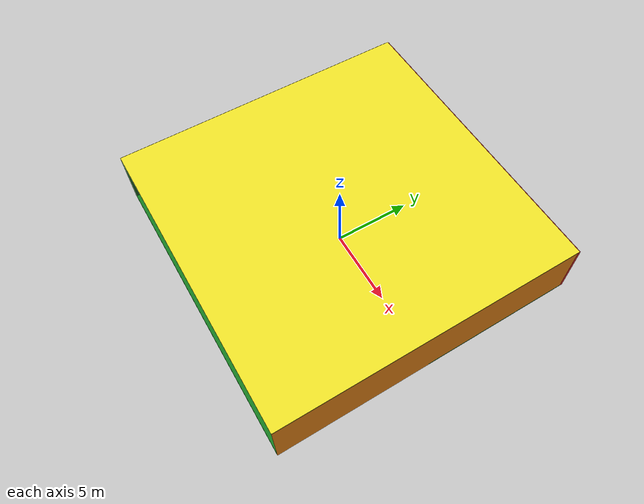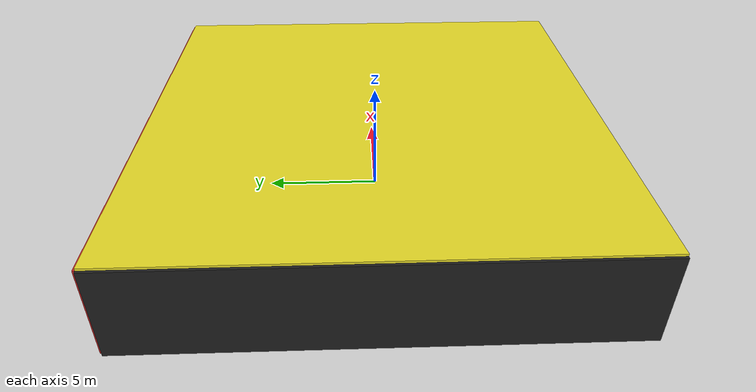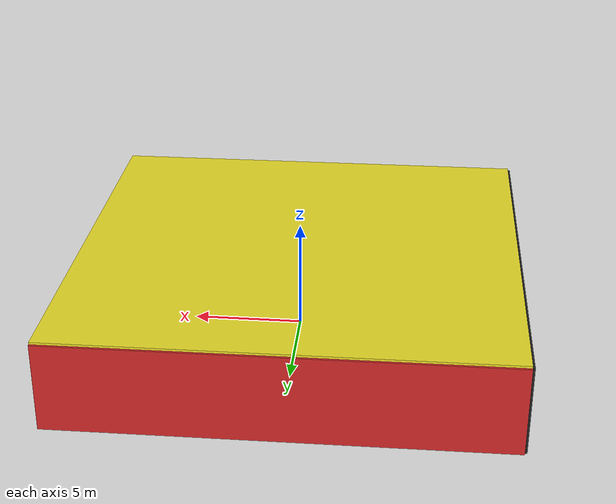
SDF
<sdf version="1.4">
 <world name="default">
  <physics type="ode">
   <max_step_size>0.001</max_step_size>
   <real_time_factor>1</real_time_factor>
   <real_time_update_rate>1000</real_time_update_rate>
   <gravity>0 0 -9.8</gravity>
  </physics>
  <scene><ambient>0.4 0.4 0.4 1</ambient><background>0.7 0.7 0.7 1</background><shadows>1</shadows></scene>
  <model name="Surrounding">
   <static>1</static>
   <link name="Ceiling">
    <collision name="Ceiling_Collision"><geometry><box><size>20 20 0.1</size></box></geometry></collision>
    <visual name="Ceiling_Visual">
     <geometry><box><size>20 20 0.1</size></box></geometry>
     <material>
      <script><uri>file://media/materials/scripts/gazebo.material</uri><name>Gazebo/Yellow</name></script>
     </material>
    </visual>
    <pose>0 0 4.05 0 0 0</pose>
   </link>
   <link name="Wall_South">
    <collision name="Wall_South_Collision">
     <geometry><box><size>20 0 4</size></box></geometry>
     <pose>0 0 2 0 -0 0</pose>
    </collision>
    <visual name="Wall_South_Visual">
     <pose>0 0 2 0 -0 0</pose>
     <geometry><box><size>20 0 4</size></box></geometry>
     <material>
      <script><uri>file://media/materials/scripts/gazebo.material</uri><name>Gazebo/GreenTransparent</name></script>
     </material>
    </visual>
    <velocity_decay><linear>0</linear><angular>0</angular></velocity_decay>
    <pose>0 -10 0 0 -0 0</pose>
   </link>
   <link name="Wall_East">
    <collision name="Wall_21_Collision">
     <geometry><box><size>20 0 4</size></box></geometry>
     <pose>0 0 2 0 -0 0</pose>
    </collision>
    <visual name="Wall_21_Visual">
     <pose>0 0 2 0 -0 0</pose>
     <geometry><box><size>20 0 4</size></box></geometry>
     <material>
      <script><uri>file://media/materials/scripts/gazebo.material</uri><name>Gazebo/Orange</name></script>
     </material>
    </visual>
    <velocity_decay><linear>0</linear><angular>0</angular></velocity_decay>
    <pose>10 0 0 0 -0 1.5708</pose>
   </link>
   <link name="Wall_North">
    <collision name="Wall_22_Collision">
     <geometry><box><size>20 0.2 4</size></box></geometry>
     <pose>0 0 2 0 -0 0</pose>
    </collision>
    <visual name="Wall_22_Visual">
     <pose>0 0 2 0 -0 0</pose>
     <geometry><box><size>20 0.2 4</size></box></geometry>
     <material>
      <script><uri>file://media/materials/scripts/gazebo.material</uri><name>Gazebo/RedGlow</name></script>
     </material>
    </visual>
    <velocity_decay><linear>0</linear><angular>0</angular></velocity_decay>
    <pose>0 10 0 0 -0 0</pose>
   </link>
   <link name="Wall_West">
    <collision name="Wall_23_Collision">
     <geometry><box><size>20 0.2 4</size></box></geometry>
     <pose>0 0 2 0 -0 0</pose>
    </collision>
    <visual name="Wall_23_Visual">
     <pose>0 0 2 0 -0 0</pose>
     <geometry><box><size>20 0.2 4</size></box></geometry>
     <material>
      <script><uri>file://media/materials/scripts/gazebo.material</uri><name>Gazebo/FlatBlack</name></script>
     </material>
    </visual>
    <velocity_decay><linear>0</linear><angular>0</angular></velocity_decay>
    <pose>-10 0 0 0 0 -1.5708</pose>
   </link>
   <link name="Ground_link">
    <collision name="collision">
     <pose>0 0 .05 0 -0 0</pose>
     <geometry><box><size>20 20 0.1</size></box></geometry>
    </collision>
    <visual name="visual">
     <pose>0 0 .05 0 -0 0</pose>
     <geometry><box><size>20 20 0.1</size></box></geometry>
     <material>
      <script><uri>file://media/materials/scripts/gazebo.material</uri><name>Gazebo/Green</name></script>
     </material>
    </visual>
   </link>
   <static>1</static>
  </model>
  <spherical_coordinates>
   <surface_model>EARTH_WGS84</surface_model>
   <latitude_deg>0</latitude_deg>
   <longitude_deg>0</longitude_deg>
   <elevation>0</elevation>
   <heading_deg>0</heading_deg>
  </spherical_coordinates>
  <light name="lightball_0" type="diffuse">
   <diffuse>0.8 0.8 0.8 1</diffuse>
   <specular>0.2 0.2 0.2 1</specular>
   <attenuation>
    <range>100</range>
    <constant>0.7</constant>
    <linear>0.01</linear>
    <quadratic>0.001</quadratic>
   </attenuation>
   <direction>-0.5 0.1 -0.9</direction>
   <pose>7.40743957579 -2.14707813382 3.8929556122 0 0 0</pose>
  </light>
  <light name="lightball_1" type="diffuse">
   <diffuse>0.8 0.8 0.8 1</diffuse>
   <specular>0.2 0.2 0.2 1</specular>
   <attenuation>
    <range>100</range>
    <constant>0.7</constant>
    <linear>0.01</linear>
    <quadratic>0.001</quadratic>
   </attenuation>
   <direction>-0.5 0.1 -0.9</direction>
   <pose>-5.08573015748 -4.66153321444 2.47555196219 0 0 0</pose>
  </light>
  <light name="lightball_2" type="diffuse">
   <diffuse>0.8 0.8 0.8 1</diffuse>
   <specular>0.2 0.2 0.2 1</specular>
   <attenuation>
    <range>100</range>
    <constant>0.7</constant>
    <linear>0.01</linear>
    <quadratic>0.001</quadratic>
   </attenuation>
   <direction>-0.5 0.1 -0.9</direction>
   <pose>6.00209521727 -6.71407208106 3.27733220318 0 0 0</pose>
  </light>
  <include><uri>model://table</uri><pose>-6.71704691913 -4.214865602 0 0 0 2.73171852068</pose></include>
  <include><uri>model://table</uri><pose>-3.71170029822 -0.8849708183 0 0 0 0.284041870669</pose></include>
  <include>
   <uri>model://textured_shapes</uri>
   <pose>-4.17696346044 1.73888403075 0 0 0 2.35476245583</pose>
  </include>
  <include>
   <uri>model://robocup_3Dsim_goal</uri>
   <pose>-3.98929787014 5.28320187865 0 0 0 0.352165231098</pose>
  </include>
  <include>
   <uri>model://robocup_3Dsim_goal</uri>
   <pose>-1.35460318801 4.62040324069 0 0 0 0.749889122237</pose>
  </include>
  <include><uri>model://table</uri><pose>5.03394279058 8.06594330178 0 0 0 2.86527654719</pose></include>
  <include><uri>model://table</uri><pose>7.46706539656 7.676793661 0 0 0 1.48286365302</pose></include>
 </world>
</sdf>

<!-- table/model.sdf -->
<sdf version="1.5">
  <model name="table">
    <static>true</static>
    <link name="link">
      <collision name="surface">
        <pose>0 0 1.0 0 0 0</pose>
        <geometry>
          <box>
            <size>1.5 0.8 0.03</size>
          </box>
        </geometry>
        <surface>
          <friction>
            <ode>
              <mu>0.6</mu>
              <mu2>0.6</mu2>
            </ode>
          </friction>
        </surface>
      </collision>
      <visual name="visual1">
        <pose>0 0 1.0 0 0 0</pose>
        <geometry>
          <box>
            <size>1.5 0.8 0.03</size>
          </box>
        </geometry>
        <material>
          <script>
            <uri>model://media/materials/scripts/gazebo.material</uri>
            <name>Gazebo/Wood</name>
          </script>
        </material>
      </visual>
      <collision name="front_left_leg">
        <pose>0.68 0.38 0.5 0 0 0</pose>
        <geometry>
          <cylinder>
            <radius>0.02</radius>
            <length>1.0</length>
          </cylinder>
        </geometry>
      </collision>
      <visual name="front_left_leg">
        <pose>0.68 0.38 0.5 0 0 0</pose>
        <geometry>
          <cylinder>
            <radius>0.02</radius>
            <length>1.0</length>
          </cylinder>
        </geometry>
        <material>
          <script>
            <uri>model://media/materials/scripts/gazebo.material</uri>
            <name>Gazebo/Grey</name>
          </script>
        </material>
      </visual>
      <collision name="front_right_leg">
        <pose>0.68 -0.38 0.5 0 0 0</pose>
        <geometry>
          <cylinder>
            <radius>0.02</radius>
            <length>1.0</length>
          </cylinder>
        </geometry>
      </collision>
      <visual name="front_right_leg">
        <pose>0.68 -0.38 0.5 0 0 0</pose>
        <geometry>
          <cylinder>
            <radius>0.02</radius>
            <length>1.0</length>
          </cylinder>
        </geometry>
        <material>
          <script>
            <uri>model://media/materials/scripts/gazebo.material</uri>
            <name>Gazebo/Grey</name>
          </script>
        </material>
      </visual>
      <collision name="back_right_leg">
        <pose>-0.68 -0.38 0.5 0 0 0</pose>
        <geometry>
          <cylinder>
            <radius>0.02</radius>
            <length>1.0</length>
          </cylinder>
        </geometry>
      </collision>
      <visual name="back_right_leg">
        <pose>-0.68 -0.38 0.5 0 0 0</pose>
        <geometry>
          <cylinder>
            <radius>0.02</radius>
            <length>1.0</length>
          </cylinder>
        </geometry>
        <material>
          <script>
            <uri>model://media/materials/scripts/gazebo.material</uri>
            <name>Gazebo/Grey</name>
          </script>
        </material>
      </visual>
      <collision name="back_left_leg">
        <pose>-0.68 0.38 0.5 0 0 0</pose>
        <geometry>
          <cylinder>
            <radius>0.02</radius>
            <length>1.0</length>
          </cylinder>
        </geometry>
      </collision>
      <visual name="back_left_leg">
        <pose>-0.68 0.38 0.5 0 0 0</pose>
        <geometry>
          <cylinder>
            <radius>0.02</radius>
            <length>1.0</length>
          </cylinder>
        </geometry>
        <material>
          <script>
            <uri>model://media/materials/scripts/gazebo.material</uri>
            <name>Gazebo/Grey</name>
          </script>
        </material>
      </visual>
    </link>
  </model>
</sdf>

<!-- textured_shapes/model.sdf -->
<sdf version="1.6">
  <model name="textured_shapes">
    <pose>0 0 0.5 0 0 0</pose>
    <link name="box">
      <pose>0 -1.5 0 0 0 0</pose>
      <collision name="collision">
        <geometry>
          <box>
            <size>1 1 1</size>
          </box>
        </geometry>
      </collision>
      <visual name="visual">
        <geometry>
          <box>
            <size>1 1 1</size>
          </box>
        </geometry>
        <material>
          <script>
            <uri>model://../model_source/models/textured_shapes/materials/scripts</uri>
            <uri>model://../model_source/models/textured_shapes/materials/textures</uri>
            <name>TexturedShape/Squares</name>
          </script>
        </material>
      </visual>
    </link>
    <link name="sphere">
      <collision name="collision">
        <geometry>
          <sphere>
            <radius>0.5</radius>
          </sphere>
        </geometry>
      </collision>
      <visual name="visual">
        <geometry>
          <sphere>
            <radius>0.5</radius>
          </sphere>
        </geometry>
        <material>
          <script>
            <uri>model://../model_source/models/textured_shapes/materials/scripts</uri>
            <uri>model://../model_source/models/textured_shapes/materials/textures</uri>
            <name>TexturedShape/Squares</name>
          </script>
        </material>
      </visual>
    </link>
    <link name="cylinder">
      <pose>0 1.5 0 0 0 0</pose>
      <collision name="collision">
        <geometry>
          <cylinder>
            <radius>0.5</radius>
            <length>1</length>
          </cylinder>
        </geometry>
      </collision>
      <visual name="visual">
        <geometry>
          <cylinder>
            <radius>0.5</radius>
            <length>1</length>
          </cylinder>
        </geometry>
        <material>
          <script>
            <uri>model://../model_source/models/textured_shapes/materials/scripts</uri>
            <uri>model://../model_source/models/textured_shapes/materials/textures</uri>
            <name>TexturedShape/Squares</name>
          </script>
        </material>
      </visual>
    </link>
  </model>
</sdf>

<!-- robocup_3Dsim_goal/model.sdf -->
<sdf version="1.5">
  <model name="robocup_3d_goal">
    <static>true</static>
    <link name="left_post">
      <pose>0 1.05 0.45 0 0 0</pose>
      <collision name="collision">
        <geometry>
          <cylinder>
            <radius>0.05</radius>
            <length>0.9</length>
          </cylinder>
        </geometry>
      </collision>
      <visual name="visual">
        <geometry>
          <cylinder>
            <radius>0.05</radius>
            <length>0.9</length>
          </cylinder>
        </geometry>
        <material>
          <script>
            <uri>file://media/materials/scripts/gazebo.material</uri>
            <name>Gazebo/ZincYellow</name>
          </script>
        </material>
      </visual>
    </link>
    <link name="left_support_horiz_lower">
      <pose>0.30 1.05 0.01 0 0 0</pose>
      <collision name="collision">
        <geometry>
          <box>
            <size>0.50 0.02 0.02</size>
          </box>
        </geometry>
      </collision>
      <visual name="visual">
        <geometry>
          <box>
            <size>0.50 0.02 0.02</size>
          </box>
        </geometry>
        <material>
          <script>
            <uri>file://media/materials/scripts/gazebo.material</uri>
            <name>Gazebo/White</name>
          </script>
        </material>
      </visual>
    </link>
    <link name="left_support_horiz_upper">
      <pose>0.30 1.05 0.79 0 0 0</pose>
      <collision name="collision">
        <geometry>
          <box>
            <size>0.50 0.02 0.02</size>
          </box>
        </geometry>
      </collision>
      <visual name="visual">
        <geometry>
          <box>
            <size>0.50 0.02 0.02</size>
          </box>
        </geometry>
        <material>
          <script>
            <uri>file://media/materials/scripts/gazebo.material</uri>
            <name>Gazebo/White</name>
          </script>
        </material>
      </visual>
    </link>
    <link name="left_support_vertical">
      <pose>0.56 1.05 0.4 0 1.5708 0</pose>
      <collision name="collision">
        <geometry>
          <box>
            <size>0.80 0.02 0.02</size>
          </box>
        </geometry>
      </collision>
      <visual name="visual">
        <geometry>
          <box>
            <size>0.80 0.02 0.02</size>
          </box>
        </geometry>
        <material>
          <script>
            <uri>file://media/materials/scripts/gazebo.material</uri>
            <name>Gazebo/White</name>
          </script>
        </material>
      </visual>
    </link>
    <link name="right_support_horiz_lower">
      <pose>0.30 -1.05 0.01 0 0 0</pose>
      <collision name="collision">
        <geometry>
          <box>
            <size>0.50 0.02 0.02</size>
          </box>
        </geometry>
      </collision>
      <visual name="visual">
        <geometry>
          <box>
            <size>0.50 0.02 0.02</size>
          </box>
        </geometry>
        <material>
          <script>
            <uri>file://media/materials/scripts/gazebo.material</uri>
            <name>Gazebo/White</name>
          </script>
        </material>
      </visual>
    </link>
    <link name="right_support_horiz_upper">
      <pose>0.30 -1.05 0.79 0 0 0</pose>
      <collision name="collision">
        <geometry>
          <box>
            <size>0.50 0.02 0.02</size>
          </box>
        </geometry>
      </collision>
      <visual name="visual">
        <geometry>
          <box>
            <size>0.50 0.02 0.02</size>
          </box>
        </geometry>
        <material>
          <script>
            <uri>file://media/materials/scripts/gazebo.material</uri>
            <name>Gazebo/White</name>
          </script>
        </material>
      </visual>
    </link>
    <link name="right_support_vertical">
      <pose>0.56 -1.05 0.4 0 1.5708 0</pose>
      <collision name="collision">
        <geometry>
          <box>
            <size>0.80 0.02 0.02</size>
          </box>
        </geometry>
      </collision>
      <visual name="visual">
        <geometry>
          <box>
            <size>0.80 0.02 0.02</size>
          </box>
        </geometry>
        <material>
          <script>
            <uri>file://media/materials/scripts/gazebo.material</uri>
            <name>Gazebo/White</name>
          </script>
        </material>
      </visual>
    </link>
    <link name="center_support_horiz_lower">
      <pose>0.56 0 0.01 0 1.5708 0</pose>
      <collision name="collision">
        <geometry>
          <box>
            <size>0.02 2.08 0.02</size>
          </box>
        </geometry>
      </collision>
      <visual name="visual">
        <geometry>
          <box>
            <size>0.02 2.08 0.02</size>
          </box>
        </geometry>
        <material>
          <script>
            <uri>file://media/materials/scripts/gazebo.material</uri>
            <name>Gazebo/White</name>
          </script>
        </material>
      </visual>
    </link>
    <link name="center_support_horiz_upper">
      <pose>0.56 0 0.79 0 1.5708 0</pose>
      <collision name="collision">
        <geometry>
          <box>
            <size>0.02 2.08 0.02</size>
          </box>
        </geometry>
      </collision>
      <visual name="visual">
        <geometry>
          <box>
            <size>0.02 2.08 0.02</size>
          </box>
        </geometry>
        <material>
          <script>
            <uri>file://media/materials/scripts/gazebo.material</uri>
            <name>Gazebo/White</name>
          </script>
        </material>
      </visual>
    </link>
    <link name="right_post">
      <pose>0 -1.05 0.45 0 0 0</pose>
      <collision name="collision">
        <geometry>
          <cylinder>
            <radius>0.05</radius>
            <length>0.9</length>
          </cylinder>
        </geometry>
      </collision>
      <visual name="visual">
        <geometry>
          <cylinder>
            <radius>0.05</radius>
            <length>0.9</length>
          </cylinder>
        </geometry>
        <material>
          <script>
            <uri>file://media/materials/scripts/gazebo.material</uri>
            <name>Gazebo/ZincYellow</name>
          </script>
        </material>
      </visual>
    </link>
    <link name="crossbar">
      <pose>0 0 0.85 1.57 1.57 0</pose>
      <collision name="collision">
        <geometry>
          <cylinder>
            <radius>0.05</radius>
            <length>2.0</length>
          </cylinder>
        </geometry>
      </collision>
      <visual name="visual">
        <geometry>
          <cylinder>
            <radius>0.05</radius>
            <length>2.0</length>
          </cylinder>
        </geometry>
        <material>
          <script>
            <uri>file://media/materials/scripts/gazebo.material</uri>
            <name>Gazebo/ZincYellow</name>
          </script>
        </material>
      </visual>
    </link>
    <link name="center_net">
      <pose>0.56 0 0.40 0 0 0</pose>
      <collision name="collision">
        <geometry>
          <box>
            <size>0.01 2.1 0.80</size>
          </box>
        </geometry>
      </collision>
      <visual name="visual">
        <geometry>
          <box>
            <size>0.01 2.1 0.80</size>
          </box>
        </geometry>
        <material>
          <script>
            <uri>model://../model_source/models/robocup09_spl_field/materials/scripts/</uri>
            <uri>model://../model_source/models/robocup09_spl_field/materials/textures/</uri>
            <name>RoboCup/Net</name>
          </script>
        </material>
      </visual>
    </link>
    <link name="left_net">
      <pose>0.30 1.05 0.40 0 0 0</pose>
      <collision name="collision">
        <geometry>
          <box>
            <size>0.50 0.01 0.76</size>
          </box>
        </geometry>
      </collision>
      <visual name="visual">
        <geometry>
          <box>
            <size>0.50 0.01 0.76</size>
          </box>
        </geometry>
        <material>
          <script>
            <uri>model://../model_source/models/robocup09_spl_field/materials/scripts/</uri>
            <uri>model://../model_source/models/robocup09_spl_field/materials/textures/</uri>
            <name>RoboCup/Net</name>
          </script>
        </material>
      </visual>
    </link>
    <link name="right_net">
      <pose>0.30 -1.05 0.40 0 0 0</pose>
      <collision name="collision">
        <geometry>
          <box>
            <size>0.50 0.01 0.76</size>
          </box>
        </geometry>
      </collision>
      <visual name="visual">
        <geometry>
          <box>
            <size>0.50 0.01 0.76</size>
          </box>
        </geometry>
        <material>
          <script>
            <uri>model://../model_source/models/robocup09_spl_field/materials/scripts/</uri>
            <uri>model://../model_source/models/robocup09_spl_field/materials/textures/</uri>
            <name>RoboCup/Net</name>
          </script>
        </material>
      </visual>
    </link>
  </model>
</sdf>
